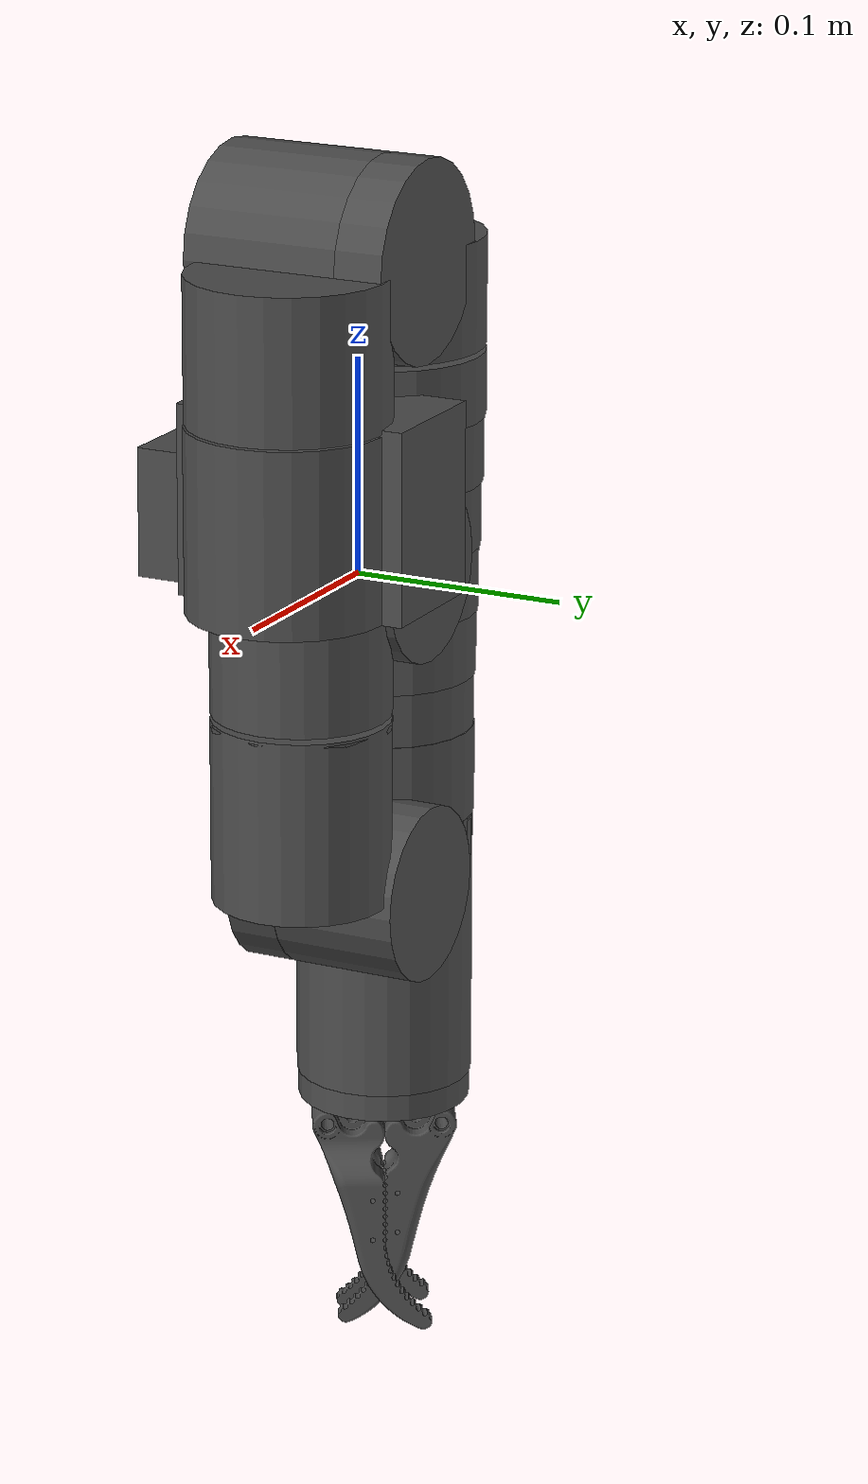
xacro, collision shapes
<?xml version="1.0"?>
<robot name="bravo"
       xmlns:xacro="http://ros.org/wiki/xacro">

  <!-- Arguments -->
  <xacro:arg name="prefix"
             default="" />
  <xacro:arg name="use_fake_hardware"
             default="true" />
  <xacro:arg name="ip_address"
             default="192.168.2.3" />
  <xacro:arg name="port"
             default="6789" />
  <xacro:arg name="state_request_rate"
             default="2" />
  <xacro:arg name="use_ft_sensor"
             default="true" />
  <xacro:arg name="initial_positions_file"
             default="initial_positions.yaml" />
  <xacro:arg name="use_sim"
             default="false" />

  <!-- Properties -->
  <xacro:property name="prefix"
                  value="$(arg prefix)" />

  <!-- Imports -->
  <xacro:include filename="$(find reach_description)/description/bravo_7/urdf.xacro" />
  <xacro:include filename="$(find reach_description)/description/bravo_7/ros2_control.xacro" />

  <link name="base_footprint" />

  <xacro:bravo_urdf parent="base_footprint"
                    prefix="${prefix}">
    <origin xyz="0 0 0"
            rpy="0 0 0" />
  </xacro:bravo_urdf>

  <xacro:bravo_system prefix="${prefix}"
                      ip_address="$(arg ip_address)"
                      port="$(arg port)"
                      state_request_rate="$(arg state_request_rate)"
                      initial_positions_file="$(arg initial_positions_file)"
                      use_sim="$(arg use_sim)"
                      use_fake_hardware="$(arg use_fake_hardware)" />

</robot>

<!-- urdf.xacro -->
<robot xmlns:xacro="http://ros.org/wiki/xacro">

  <xacro:property name="joint_damping"
                  value="0.00143" />
  <xacro:property name="prismatic_joint_damping"
                  value="0.00089" />
  <xacro:property name="joint_friction"
                  value="0.079" />
  <xacro:property name="ft_sensor_angle"
                  value="1.8259381" />

  <xacro:macro name="bravo_urdf"
               params="parent prefix *origin use_ft_sensor:=true">

    <material name="${prefix}black">
      <color rgba="0.3 0.3 0.3 1" />
    </material>

    <!-- Links -->
    <link name="${prefix}base_link">
      <visual>
        <origin xyz="0.0 0.0 0.0"
                rpy="0.0 0.0 0.0" />
        <material name="${prefix}black" />
        <geometry>
          <mesh filename="file://$(find reach_description)/meshes/bravo_7/1019-A.stl" />
        </geometry>
      </visual>
      <inertial>
        <origin xyz="0.052500000000000005 -0.0010000053071760658 0.033650002653596835"
                rpy="0.0 0.0 0.0" />
        <mass value="1.85" />
        <inertia ixx="0.00018"
                 ixy="-0.01080"
                 ixz="-0.01076"
                 iyy="-0.00819"
                 iyz="-0.01079"
                 izz="-0.00531" />
      </inertial>
      <collision>
        <geometry>
          <box size="0.0625 0.1112 0.088 " />
        </geometry>
        <origin xyz="0.03625 0.0 0.044"
                rpy="0.0 -0.0 0.0" />
      </collision>
      <collision>
        <geometry>
          <box size="0.05 0.08 0.06" />
        </geometry>
        <origin xyz="0.025 -0.04556 0.03"
                rpy="0.0 -0.0 0.0" />
      </collision>
      <collision>
        <geometry>
          <cylinder radius="0.046"
                    length="0.0851" />
        </geometry>
        <origin xyz="0.0675 0.0 0.04255"
                rpy="0.0 -0.0 0.0" />
      </collision>
    </link>

    <link name="${prefix}1019_end_link">
      <visual>
        <geometry>
          <mesh filename="file://$(find reach_description)/meshes/bravo_7/1013-A.stl" />
        </geometry>
        <material name="${prefix}black" />
        <origin xyz="0.0 0.0 0.0058"
                rpy="0.0 -0.0 3.14159" />
      </visual>
      <visual>
        <geometry>
          <mesh filename="file://$(find reach_description)/meshes/bravo_7/1019-B.stl" />
        </geometry>
        <material name="${prefix}black" />
        <origin xyz="0.0 0.0 0.0"
                rpy="0.0 0.0 3.14159" />
      </visual>
      <inertial>
        <origin xyz="0.0290000 -0.010000 0.053650"
                rpy="0.0 0.0 0.0" />
        <mass value="1.62" />
        <inertia ixx="0.0"
                 ixy="-0.00296"
                 ixz="-0.00421"
                 iyy="0.00102"
                 iyz="-0.00284"
                 izz="0.00239" />
      </inertial>
      <collision>
        <geometry>
          <cylinder radius="0.046"
                    length="0.0667" />
        </geometry>
        <origin xyz="0.0 0.0 0.03915"
                rpy="0.0 -0.0 0.0" />
      </collision>
      <collision>
        <geometry>
          <cylinder radius="0.046"
                    length="0.0738" />
        </geometry>
        <origin xyz="0.046 0.0149 0.0725"
                rpy="1.5707 -0.0 0.0" />
      </collision>
    </link>

    <link name="${prefix}1013_joint_link">
      <visual>
        <geometry>
          <mesh filename="file://$(find reach_description)/meshes/bravo_7/1013-B.stl" />
        </geometry>
        <material name="${prefix}black" />
        <origin xyz="0.0 0.0 0.0"
                rpy="0.0 0.0 3.14159" />
      </visual>
      <visual>
        <geometry>
          <mesh filename="file://$(find reach_description)/meshes/bravo_7/RS2-1026-A.stl" />
        </geometry>
        <material name="${prefix}black" />
        <origin xyz="0.046 0.0 -0.23534"
                rpy="3.14159 -0.0 3.14159" />
      </visual>
      <visual>
        <geometry>
          <mesh filename="file://$(find reach_description)/meshes/bravo_7/1030.stl" />
        </geometry>
        <material name="${prefix}black" />
        <origin xyz="0.046 0.0 -0.05334"
                rpy="3.14159 -0.0 3.14159" />
      </visual>
      <inertial>
        <origin xyz="0.02614 -0.004 -0.17621"
                rpy="0.0 -0.0 0.0" />
        <mass value="2.12" />
        <inertia ixx="0.03522"
                 ixy="-0.00002"
                 ixz="-0.00130"
                 iyy="0.03598"
                 iyz="-0.00315"
                 izz="0.00336" />
      </inertial>
      <collision>
        <geometry>
          <cylinder radius="0.046"
                    length="0.0228" />
        </geometry>
        <origin xyz="0.0 -0.0334 0.0"
                rpy="1.5707 0.0 0.0" />
      </collision>
      <collision>
        <geometry>
          <cylinder radius="0.046"
                    length="0.05094" />
        </geometry>
        <origin xyz="0.046 0.0 -0.02547"
                rpy="0.0 0.0 0.0" />
      </collision>
      <collision>
        <geometry>
          <cylinder radius="0.0408"
                    length="0.059" />
        </geometry>
        <origin xyz="0.046 0.0 -0.26484"
                rpy="3.14159 -0.0 3.14159" />
      </collision>
      <collision>
        <geometry>
          <cylinder radius="0.0408"
                    length="0.0599" />
        </geometry>
        <origin xyz="0.005290 -0.01435 -0.29434"
                rpy="-1.5707 -0.0 3.14159" />
      </collision>
      <collision>
        <geometry>
          <cylinder radius="0.046"
                    length="0.03033333" />
        </geometry>
        <origin xyz="0.046 0.0 -0.06851"
                rpy="3.14159 -0.0 3.14159" />
      </collision>
      <collision>
        <geometry>
          <cylinder radius="0.045"
                    length="0.03033333" />
        </geometry>
        <origin xyz="0.046 0.0 -0.09884"
                rpy="3.14159 -0.0 3.14159" />
      </collision>
      <collision>
        <geometry>
          <cylinder radius="0.044"
                    length="0.03033333" />
        </geometry>
        <origin xyz="0.046 0.0 -0.12917"
                rpy="3.14159 -0.0 3.14159" />
      </collision>
      <collision>
        <geometry>
          <cylinder radius="0.043"
                    length="0.03033333" />
        </geometry>
        <origin xyz="0.046 0.0 -0.15951"
                rpy="3.14159 -0.0 3.14159" />
      </collision>
      <collision>
        <geometry>
          <cylinder radius="0.042"
                    length="0.03033333" />
        </geometry>
        <origin xyz="0.046 0.0 -0.18984"
                rpy="3.14159 -0.0 3.14159" />
      </collision>
      <collision>
        <geometry>
          <cylinder radius="0.041"
                    length="0.03033333" />
        </geometry>
        <origin xyz="0.046 0.0 -0.22017"
                rpy="3.14159 -0.0 3.14159" />
      </collision>
    </link>

    <link name="${prefix}1026_0_joint_link">
      <visual>
        <geometry>
          <mesh filename="file://$(find reach_description)/meshes/bravo_7/RS2-1026-B.stl" />
        </geometry>
        <material name="${prefix}black" />
        <origin xyz="0.0 0.0 0.0"
                rpy="0.0 -0.0 0.0" />
      </visual>
      <inertial>
        <origin xyz="0.03106 0.003 -0.045"
                rpy="0.0 -0.0 0.0" />
        <mass value="1.33" />
        <inertia ixx="0.00181"
                 ixy="0.00014"
                 ixz="0.00039"
                 iyy="0.00201"
                 iyz="-0.00021"
                 izz="0.00155" />
      </inertial>
      <collision>
        <geometry>
          <cylinder radius="0.0408"
                    length="0.02335" />
        </geometry>
        <origin xyz="0.0 0.02728 0.0"
                rpy="1.5707 0.0 0.0" />
      </collision>
      <collision>
        <geometry>
          <cylinder radius="0.0408"
                    length="0.0851" />
        </geometry>
        <origin xyz="0.0408 0.0 -0.0473"
                rpy="0.0 0.0 0.0" />
      </collision>
    </link>

    <link name="${prefix}1026_1_joint_link">
      <visual>
        <geometry>
          <mesh filename="file://$(find reach_description)/meshes/bravo_7/RS2-1026-C.stl" />
        </geometry>
        <material name="${prefix}black" />
        <origin xyz="0.0 0.0 0.0"
                rpy="0.0 0.0 0.0" />
      </visual>
      <visual>
        <geometry>
          <mesh filename="file://$(find reach_description)/meshes/bravo_7/RS2-1023-A.stl" />
        </geometry>
        <material name="${prefix}black" />
        <origin xyz="0.0 0.0 0.0054"
                rpy="0.0 -0.0 3.14159" />
      </visual>
      <inertial>
        <origin xyz="-0.03093 0.012 0.05695"
                rpy="0.0 -0.0 0.0" />
        <mass value="1.33" />
        <inertia ixx="-0.00833"
                 ixy="-0.01014"
                 ixz="-0.00968"
                 iyy="-0.00765"
                 iyz="-0.01059"
                 izz="0.00151" />
      </inertial>
      <collision>
        <geometry>
          <cylinder radius="0.0408"
                    length="0.003" />
        </geometry>
        <origin xyz="0.0 0.0 0.0"
                rpy="0.0 0.0 3.14159" />
      </collision>
      <collision>
        <geometry>
          <cylinder radius="0.0408"
                    length="0.059" />
        </geometry>
        <origin xyz="0.0 0.0 0.0349"
                rpy="0.0 -0.0 3.14159" />
      </collision>
      <collision>
        <geometry>
          <cylinder radius="0.0408"
                    length="0.0599" />
        </geometry>
        <origin xyz="-0.0408 0.01435 0.0644"
                rpy="1.5707 -0.0 3.14159" />
      </collision>
    </link>

    <link name="${prefix}1023_0_joint_link">
      <visual>
        <geometry>
          <mesh filename="file://$(find reach_description)/meshes/bravo_7/RS2-1023-B.stl" />
        </geometry>
        <material name="${prefix}black" />
        <origin xyz="0.0 0.0 0.0"
                rpy="0.0 -0.0 0.0" />
      </visual>
      <inertial>
        <origin xyz="0.03882 -0.006 -0.04191"
                rpy="0.0 -0.0 0.0" />
        <mass value="0.97" />
        <inertia ixx="0.00126"
                 ixy="0.00004"
                 ixz="0.00028"
                 iyy="0.00144"
                 iyz="-0.00026"
                 izz="0.00115" />
      </inertial>
      <collision>
        <geometry>
          <cylinder radius="0.0408"
                    length="0.02335" />
        </geometry>
        <origin xyz="0.0 0.027275 0.0"
                rpy="1.5707 0.0 0.0" />
      </collision>
      <collision>
        <geometry>
          <cylinder radius="0.0408"
                    length="0.0851" />
        </geometry>
        <origin xyz="0.0408 0.0 -0.0473"
                rpy="0.0 0.0 0.0" />
      </collision>
    </link>

    <xacro:if value="${use_ft_sensor}">
      <link name="${prefix}ft_sensor_link">
        <visual>
          <geometry>
            <cylinder length="0.042"
                      radius="${0.083 / 2}" />
          </geometry>
          <material name="${prefix}black" />
          <origin xyz="0.0 0.0 0.021"
                  rpy="0.0 0.0 0.0" />
        </visual>
        <collision>
          <geometry>
            <cylinder length="0.042"
                      radius="${0.083 / 2}" />
          </geometry>
          <material name="${prefix}black" />
          <origin xyz="0.0 0.0 0.021"
                  rpy="0.0 0.0 0.0" />
        </collision>
      </link>

      <link name="${prefix}1023_1_joint_link">
        <visual>
          <geometry>
            <mesh filename="file://$(find reach_description)/meshes/bravo_7/RS2-1023-C.stl" />
          </geometry>
          <material name="${prefix}black" />
          <origin xyz="0.0 0.0 0.0"
                  rpy="0.0 -0.0 0.0" />
        </visual>
        <visual>
          <geometry>
            <mesh filename="file://$(find reach_description)/meshes/bravo_7/1038.stl" />
          </geometry>
          <material name="${prefix}black" />
          <origin xyz="0.0 0.0 0.0054"
                  rpy="0.0 -0.0 0.0" />
        </visual>
        <inertial>
          <origin xyz="-0.007856122583731653 0.0 0.06886021849973584"
                  rpy="0.0 -0.0 0.0" />
          <mass value="1.35" />
          <inertia ixx="-0.00702"
                   ixy="-0.00964"
                   ixz="-0.00962"
                   iyy="-0.00609"
                   iyz="-0.00964"
                   izz="0.00120" />
        </inertial>
        <collision>
          <geometry>
            <cylinder radius="0.0408"
                      length="0.003" />
          </geometry>
          <origin xyz="0.0 0.0 0.0"
                  rpy="0.0 0.0 0.0" />
        </collision>
        <collision>
          <geometry>
            <cylinder radius="0.0408"
                      length="0.12535" />
          </geometry>
          <origin xyz="0.0 0.0 0.0654"
                  rpy="0.0 -0.0 0.0" />
        </collision>
      </link>
    </xacro:if>

    <xacro:unless value="${use_ft_sensor}">
      <link name="${prefix}1023_1_joint_link">
        <inertial>
          <origin xyz="-0.00785 0.0 0.04286"
                  rpy="0.0 -0.0 0.0" />
          <mass value="1.09" />
          <inertia ixx="-0.00574"
                   ixy="-0.00778"
                   ixz="-0.00777"
                   iyy="-0.00579"
                   iyz="-0.00778"
                   izz="0.000969" />
        </inertial>
        <visual>
          <geometry>
            <mesh filename="file://$(find reach_description)/meshes/bravo_7/RS2-1023-C.stl" />
          </geometry>
          <material name="${prefix}black" />
          <origin xyz="0.0 0.0 0.0"
                  rpy="0.0 -0.0 0.0" />
        </visual>
        <visual>
          <geometry>
            <mesh filename="file://$(find reach_description)/meshes/bravo_7/1038.stl" />
          </geometry>
          <material name="${prefix}black" />
          <origin xyz="0.0 0.0 0.0054"
                  rpy="0.0 -0.0 0.0" />
        </visual>
        <collision>
          <geometry>
            <cylinder radius="0.0408"
                      length="0.003" />
          </geometry>
          <origin xyz="0.0 0.0 0.0"
                  rpy="0.0 0.0 0.0" />
        </collision>
        <collision>
          <geometry>
            <cylinder radius="0.0408"
                      length="0.12535" />
          </geometry>
          <origin xyz="0.0 0.0 0.0654"
                  rpy="0.0 -0.0 0.0" />
        </collision>
      </link>
    </xacro:unless>

    <link name="${prefix}push_rod">
      <visual>
        <geometry>
          <cylinder length="0.01"
                    radius="0.0001" />
        </geometry>
        <material name="${prefix}black" />
        <origin xyz="0.0 0.0 0.0"
                rpy="0.0 -0.0 0.0" />
      </visual>
      <inertial>
        <mass value="0.01" />
        <inertia ixx="0.0001"
                 ixy="0.0"
                 ixz="0.0"
                 iyy="0.0001"
                 iyz="0.0"
                 izz="0.0001" />
      </inertial>
    </link>

    <!-- Joints -->
    <joint name="${prefix}base_joint"
           type="fixed">
      <parent link="${parent}" />
      <child link="${prefix}base_link" />
      <dynamics damping="${joint_damping}"
                friction="${joint_friction}" />
      <xacro:insert_block name="origin" />
    </joint>

    <joint name="${prefix}axis_g"
           type="revolute">
      <parent link="${prefix}base_link" />
      <child link="${prefix}1019_end_link" />
      <axis xyz=" 0 0 -1" />
      <origin xyz="0.0665 0.0 0.08"
              rpy="0.0 -0.0 3.14159" />
      <dynamics damping="${joint_damping}"
                friction="${joint_friction}" />
      <limit effort="500.0"
             velocity="6.0"
             lower="0.0"
             upper="6.2" />
    </joint>

    <joint name="${prefix}axis_f"
           type="revolute">
      <parent link="${prefix}1019_end_link" />
      <child link="${prefix}1013_joint_link" />
      <axis xyz=" 0 -1 0" />
      <origin xyz="0.046 0.0 0.0725"
              rpy="0.0 -0.0 0.0" />
      <dynamics damping="${joint_damping}"
                friction="${joint_friction}" />
      <limit effort="500.0"
             velocity="6.0"
             lower="0.0"
             upper="3.14" />
    </joint>

    <joint name="${prefix}axis_e"
           type="revolute">
      <parent link="${prefix}1013_joint_link" />
      <child link="${prefix}1026_0_joint_link" />
      <axis xyz=" 0 -1 0" />
      <origin xyz="0.0052 0.0 -0.29434"
              rpy="3.14159 -0.0 3.14159" />
      <dynamics damping="${joint_damping}"
                friction="${joint_friction}" />
      <limit effort="500.0"
             velocity="6.0"
             lower="0.0"
             upper="3.14" />
    </joint>

    <joint name="${prefix}axis_d"
           type="revolute">
      <parent link="${prefix}1026_0_joint_link" />
      <child link="${prefix}1026_1_joint_link" />
      <axis xyz=" 0 0 -1" />
      <origin xyz="0.0408 0.0 -0.08705"
              rpy="3.14159 -0.0 0.0" />
      <dynamics damping="${joint_damping}"
                friction="${joint_friction}" />
      <limit effort="500.0"
             velocity="6.0"
             lower="0.0"
             upper="6.2" />
    </joint>

    <joint name="${prefix}axis_c"
           type="revolute">
      <parent link="${prefix}1026_1_joint_link" />
      <child link="${prefix}1023_0_joint_link" />
      <axis xyz=" 0 -1 0" />
      <origin xyz="-0.0408 0.0 0.0644"
              rpy="0.0 -0.0 3.14159" />
      <dynamics damping="${joint_damping}"
                friction="${joint_friction}" />
      <limit effort="500.0"
             velocity="6.0"
             lower="0.0"
             upper="3.14" />
    </joint>

    <xacro:if value="${use_ft_sensor}">
      <joint name="${prefix}axis_b"
             type="revolute">
        <parent link="${prefix}1023_0_joint_link" />
        <child link="${prefix}ft_sensor_link" />
        <axis xyz=" 0 0 -1" />
        <origin xyz="0.0408 0.0 -0.08705"
                rpy="-3.14159 -7.041538791385784e-12 ${ft_sensor_angle-3.14159}" />
        <dynamics damping="${joint_damping}"
                  friction="${joint_friction}" />
        <limit effort="500.0"
               velocity="6.0"
               lower="0"
               upper="6.28" />
      </joint>

      <joint name="bravo_ft_fixed_joint"
             type="fixed">
        <parent link="${prefix}ft_sensor_link" />
        <child link="${prefix}1023_1_joint_link" />
        <axis xyz=" 0 0 -1" />
        <origin xyz="0 0 0.042"
                rpy="0 0 ${-ft_sensor_angle}" />
      </joint>
    </xacro:if>

    <xacro:unless value="${use_ft_sensor}">
      <joint name="${prefix}axis_b"
             type="revolute">
        <parent link="${prefix}1023_0_joint_link" />
        <child link="${prefix}1023_1_joint_link" />
        <axis xyz=" 0 0 -1" />
        <origin xyz="0.0408 0.0 -0.08705"
                rpy="-3.14159 -7.041538791385784e-12 -3.14159" />
        <dynamics damping="${joint_damping}"
                  friction="${joint_friction}" />
        <limit effort="500.0"
               velocity="6.0"
               lower="0"
               upper="6.28" />
      </joint>
    </xacro:unless>

    <joint name="${prefix}axis_a"
           type="prismatic">
      <parent link="${prefix}1023_1_joint_link" />
      <child link="${prefix}push_rod" />
      <axis xyz="0 0 1" />
      <origin xyz="-0.009 0.0 0.13075"
              rpy="0.0 -1.5707 0.0" />
      <dynamics damping="${prismatic_joint_damping}"
                friction="${joint_friction}" />
      <limit effort="1000.0"
             velocity="10.0"
             lower="0.0"
             upper="0.035" />
    </joint>

    <xacro:include filename="$(find reach_description)/description/bravo_7/end_effectors/standard_jaws.urdf.xacro" />

    <xacro:standard_jaws_urdf parent="${prefix}1023_1_joint_link"
                              prefix="${prefix}standard_jaws_"
                              axis_a="${prefix}axis_a">
      <origin xyz="0 0 0"
              rpy="0 0 0" />
    </xacro:standard_jaws_urdf>

  </xacro:macro>

</robot>

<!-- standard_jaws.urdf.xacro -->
<robot xmlns:xacro="http://ros.org/wiki/xacro">

  <xacro:macro name="standard_jaws_urdf"
               params="parent prefix axis_a *origin">

    <material name="${prefix}black">
      <color rgba="0.3 0.3 0.3 1" />
    </material>

    <link name="${prefix}base_link">
      <visual>
        <geometry>
          <mesh filename="file://$(find reach_description)/meshes/bravo_7/end_effectors/RS2-257.stl" />
        </geometry>
        <material name="${prefix}black" />
        <origin xyz="0.0 0.0 0.13075"
                rpy="0.0 -1.5707 0.0" />
      </visual>
      <inertial>
        <origin xyz="0.008269 0.0 0.13075"
                rpy="0.0 -0.0 0.0" />
        <mass value="0.64" />
        <inertia ixx="0.0003"
                 ixy="0.0"
                 ixz="0.0"
                 iyy="0.002202"
                 iyz="0.0"
                 izz="0.002181" />
      </inertial>
      <collision>
        <geometry>
          <cylinder length="0.02"
                    radius="0.04" />
        </geometry>
        <origin xyz="0.0 0.0 0.13075"
                rpy="0.0 0.0 0.0" />
      </collision>
    </link>

    <link name="${prefix}rs2_300_link">
      <visual>
        <geometry>
          <mesh filename="file://$(find reach_description)/meshes/bravo_7/end_effectors/RS2-300.stl" />
        </geometry>
        <material name="${prefix}black" />
      </visual>
      <inertial>
        <mass value="0.24" />
        <origin xyz="0.05 0.0 0.0" />
        <inertia ixx="0.001"
                 ixy="0.0"
                 ixz="0.0"
                 iyy="0.001"
                 iyz="0.0"
                 izz="0.001" />
      </inertial>
      <collision>
        <geometry>
          <mesh filename="file://$(find reach_description)/meshes/bravo_7/end_effectors/RS2-300.stl" />
        </geometry>
      </collision>
    </link>

    <link name="${prefix}rs2_301_link">
      <visual>
        <geometry>
          <mesh filename="file://$(find reach_description)/meshes/bravo_7/end_effectors/RS2-301.stl" />
        </geometry>
        <material name="${prefix}black" />
      </visual>
      <inertial>
        <mass value="0.24" />
        <origin xyz="0.05 0.0 0.0" />
        <inertia ixx="0.001"
                 ixy="0.0"
                 ixz="0.0"
                 iyy="0.001"
                 iyz="0.0"
                 izz="0.001" />
      </inertial>
      <collision>
        <geometry>
          <mesh filename="file://$(find reach_description)/meshes/bravo_7/end_effectors/RS2-301.stl" />
        </geometry>
      </collision>
    </link>

    <joint name="${prefix}base_joint"
           type="fixed">
      <xacro:insert_block name="origin" />
      <parent link="${parent}" />
      <child link="${prefix}base_link" />
      <origin xyz="0.0 0.0 0.0"
              rpy="0.0 0.0 0.0" />
    </joint>

    <joint name="${prefix}rs2_300_joint"
           type="revolute">
      <origin xyz="2.3214757534187783e-06 0.0268 0.15484999988818982"
              rpy="0.0 -1.5706999999997038 0.0" />
      <parent link="${prefix}base_link" />
      <child link="${prefix}rs2_300_link" />
      <axis xyz="0 0 -1" />
      <limit lower="0.0"
             upper="1.0"
             effort="400"
             velocity="10.0" />
      <mimic joint="${axis_a}"
             multiplier="18"
             offset="0" />
    </joint>

    <joint name="${prefix}rs2_301_joint"
           type="revolute">
      <origin xyz="2.3214757534187783e-06 -0.0268 0.15484999988818982"
              rpy="0.0 -1.5706999999997038 0.0" />
      <parent link="${prefix}base_link" />
      <child link="${prefix}rs2_301_link" />
      <axis xyz="0 0 1" />
      <limit lower="0"
             upper="1.0"
             effort="400"
             velocity="10.0" />
      <mimic joint="${prefix}rs2_300_joint"
             multiplier="1"
             offset="0" />
    </joint>

  </xacro:macro>

</robot>
